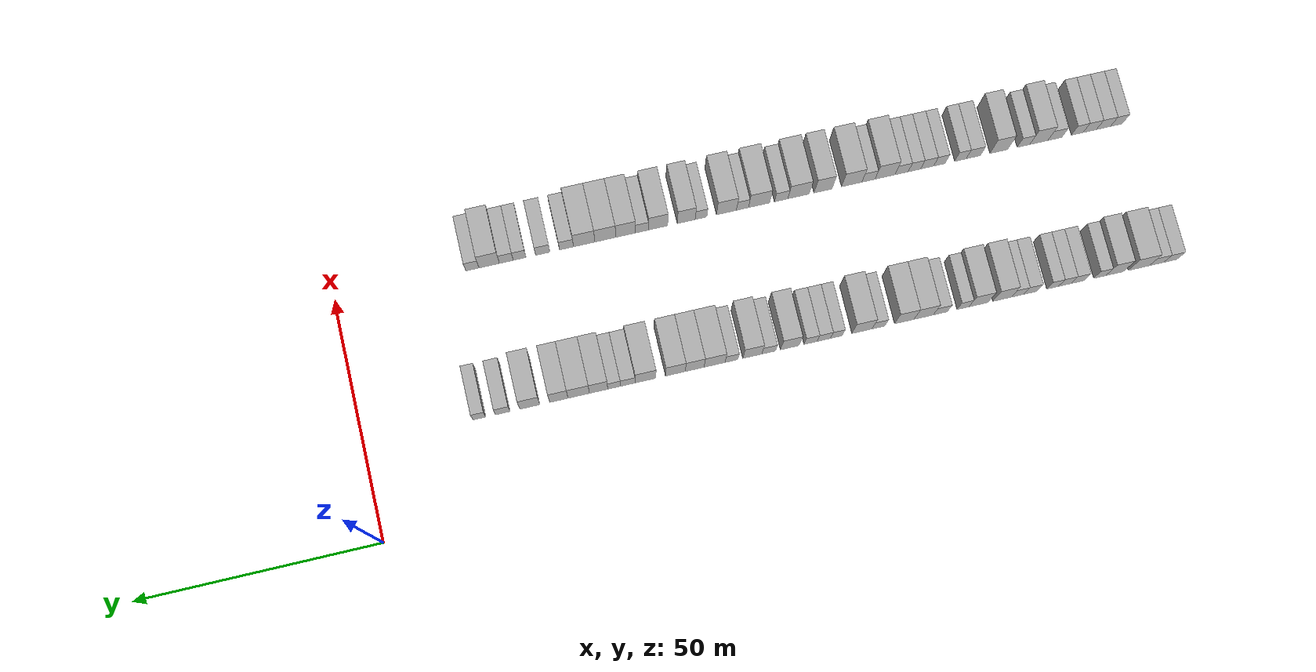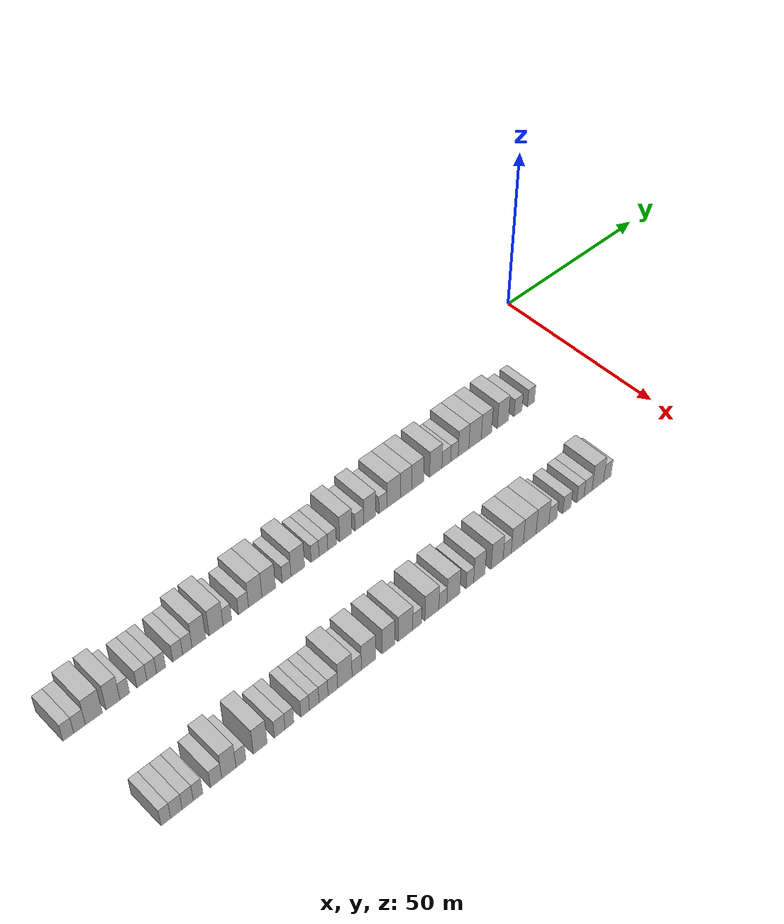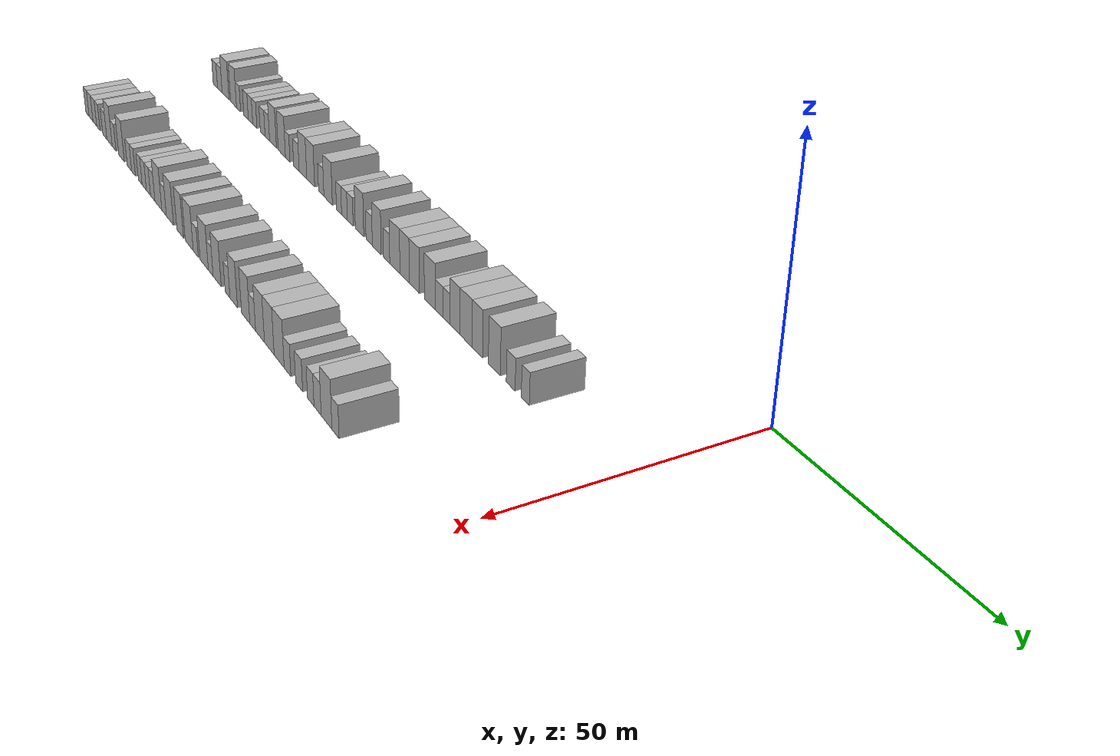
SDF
<sdf version="1.6">
 <world name="default">
  <model name="building_71">
   <static>1</static>
   <pose>25.0000 -165.8649 0 0.000000 0.000000 0.000000</pose>
   <link name="link">
    <pose>0 0 3.00 0 0 0</pose>
    <collision name="collision"><geometry><box><size>10.0000 2.8010 6.0000</size></box></geometry></collision>
    <visual name="visual">
     <cast_shadows>0</cast_shadows>
     <geometry><box><size>10.0000 2.8010 6.0000</size></box></geometry>
     <material>
      <script>
       <uri>model://HANNAS_wall/materials/scripts</uri>
       <uri>model://HANNAS_wall/materials/textures</uri>
       <name>vrc/HANNAS_wall</name>
      </script>
     </material>
    </visual>
   </link>
  </model>
  <model name="building_72">
   <static>1</static>
   <pose>25.0000 -162.9663 0 0.000000 0.000000 0.000000</pose>
   <link name="link">
    <pose>0 0 3.00 0 0 0</pose>
    <collision name="collision"><geometry><box><size>10.0000 2.9960 6.0000</size></box></geometry></collision>
    <visual name="visual">
     <cast_shadows>0</cast_shadows>
     <geometry><box><size>10.0000 2.9960 6.0000</size></box></geometry>
     <material>
      <script>
       <uri>model://HANNAS_wall/materials/scripts</uri>
       <uri>model://HANNAS_wall/materials/textures</uri>
       <name>vrc/HANNAS_wall</name>
      </script>
     </material>
    </visual>
   </link>
  </model>
  <model name="building_73">
   <static>1</static>
   <pose>25.0000 -159.2504 0 0.000000 0.000000 0.000000</pose>
   <link name="link">
    <pose>0 0 4.50 0 0 0</pose>
    <collision name="collision"><geometry><box><size>10.0000 4.4359 9.0000</size></box></geometry></collision>
    <visual name="visual">
     <cast_shadows>0</cast_shadows>
     <geometry><box><size>10.0000 4.4359 9.0000</size></box></geometry>
     <material>
      <script>
       <uri>model://HANNAS_wall/materials/scripts</uri>
       <uri>model://HANNAS_wall/materials/textures</uri>
       <name>vrc/HANNAS_wall</name>
      </script>
     </material>
    </visual>
   </link>
  </model>
  <model name="building_74">
   <static>1</static>
   <pose>25.0000 -154.1892 0 0.000000 0.000000 0.000000</pose>
   <link name="link">
    <pose>0 0 4.50 0 0 0</pose>
    <collision name="collision"><geometry><box><size>10.0000 3.6865 9.0000</size></box></geometry></collision>
    <visual name="visual">
     <cast_shadows>0</cast_shadows>
     <geometry><box><size>10.0000 3.6865 9.0000</size></box></geometry>
     <material>
      <script>
       <uri>model://HANNAS_wall/materials/scripts</uri>
       <uri>model://HANNAS_wall/materials/textures</uri>
       <name>vrc/HANNAS_wall</name>
      </script>
     </material>
    </visual>
   </link>
  </model>
  <model name="building_75">
   <static>1</static>
   <pose>25.0000 -151.0661 0 0.000000 0.000000 0.000000</pose>
   <link name="link">
    <pose>0 0 3.00 0 0 0</pose>
    <collision name="collision"><geometry><box><size>10.0000 2.5597 6.0000</size></box></geometry></collision>
    <visual name="visual">
     <cast_shadows>0</cast_shadows>
     <geometry><box><size>10.0000 2.5597 6.0000</size></box></geometry>
     <material>
      <script>
       <uri>model://HANNAS_wall/materials/scripts</uri>
       <uri>model://HANNAS_wall/materials/textures</uri>
       <name>vrc/HANNAS_wall</name>
      </script>
     </material>
    </visual>
   </link>
  </model>
  <model name="building_76">
   <static>1</static>
   <pose>25.0000 -146.4339 0 0.000000 0.000000 0.000000</pose>
   <link name="link">
    <pose>0 0 3.00 0 0 0</pose>
    <collision name="collision"><geometry><box><size>10.0000 2.7047 6.0000</size></box></geometry></collision>
    <visual name="visual">
     <cast_shadows>0</cast_shadows>
     <geometry><box><size>10.0000 2.7047 6.0000</size></box></geometry>
     <material>
      <script>
       <uri>model://HANNAS_wall/materials/scripts</uri>
       <uri>model://HANNAS_wall/materials/textures</uri>
       <name>vrc/HANNAS_wall</name>
      </script>
     </material>
    </visual>
   </link>
  </model>
  <model name="building_77">
   <static>1</static>
   <pose>25.0000 -143.7549 0 0.000000 0.000000 0.000000</pose>
   <link name="link">
    <pose>0 0 3.00 0 0 0</pose>
    <collision name="collision"><geometry><box><size>10.0000 2.6533 6.0000</size></box></geometry></collision>
    <visual name="visual">
     <cast_shadows>0</cast_shadows>
     <geometry><box><size>10.0000 2.6533 6.0000</size></box></geometry>
     <material>
      <script>
       <uri>model://HANNAS_wall/materials/scripts</uri>
       <uri>model://HANNAS_wall/materials/textures</uri>
       <name>vrc/HANNAS_wall</name>
      </script>
     </material>
    </visual>
   </link>
  </model>
  <model name="building_78">
   <static>1</static>
   <pose>25.0000 -141.1918 0 0.000000 0.000000 0.000000</pose>
   <link name="link">
    <pose>0 0 3.00 0 0 0</pose>
    <collision name="collision"><geometry><box><size>10.0000 2.4729 6.0000</size></box></geometry></collision>
    <visual name="visual">
     <cast_shadows>0</cast_shadows>
     <geometry><box><size>10.0000 2.4729 6.0000</size></box></geometry>
     <material>
      <script>
       <uri>model://HANNAS_wall/materials/scripts</uri>
       <uri>model://HANNAS_wall/materials/textures</uri>
       <name>vrc/HANNAS_wall</name>
      </script>
     </material>
    </visual>
   </link>
  </model>
  <model name="building_79">
   <static>1</static>
   <pose>25.0000 -136.5845 0 0.000000 0.000000 0.000000</pose>
   <link name="link">
    <pose>0 0 3.00 0 0 0</pose>
    <collision name="collision"><geometry><box><size>10.0000 2.7418 6.0000</size></box></geometry></collision>
    <visual name="visual">
     <cast_shadows>0</cast_shadows>
     <geometry><box><size>10.0000 2.7418 6.0000</size></box></geometry>
     <material>
      <script>
       <uri>model://HANNAS_wall/materials/scripts</uri>
       <uri>model://HANNAS_wall/materials/textures</uri>
       <name>vrc/HANNAS_wall</name>
      </script>
     </material>
    </visual>
   </link>
  </model>
  <model name="building_80">
   <static>1</static>
   <pose>25.0000 -133.9002 0 0.000000 0.000000 0.000000</pose>
   <link name="link">
    <pose>0 0 3.00 0 0 0</pose>
    <collision name="collision"><geometry><box><size>10.0000 2.6268 6.0000</size></box></geometry></collision>
    <visual name="visual">
     <cast_shadows>0</cast_shadows>
     <geometry><box><size>10.0000 2.6268 6.0000</size></box></geometry>
     <material>
      <script>
       <uri>model://HANNAS_wall/materials/scripts</uri>
       <uri>model://HANNAS_wall/materials/textures</uri>
       <name>vrc/HANNAS_wall</name>
      </script>
     </material>
    </visual>
   </link>
  </model>
  <model name="building_81">
   <static>1</static>
   <pose>25.0000 -130.6508 0 0.000000 0.000000 0.000000</pose>
   <link name="link">
    <pose>0 0 4.50 0 0 0</pose>
    <collision name="collision"><geometry><box><size>10.0000 3.8720 9.0000</size></box></geometry></collision>
    <visual name="visual">
     <cast_shadows>0</cast_shadows>
     <geometry><box><size>10.0000 3.8720 9.0000</size></box></geometry>
     <material>
      <script>
       <uri>model://HANNAS_wall/materials/scripts</uri>
       <uri>model://HANNAS_wall/materials/textures</uri>
       <name>vrc/HANNAS_wall</name>
      </script>
     </material>
    </visual>
   </link>
  </model>
  <model name="building_82">
   <static>1</static>
   <pose>25.0000 -125.7303 0 0.000000 0.000000 0.000000</pose>
   <link name="link">
    <pose>0 0 4.50 0 0 0</pose>
    <collision name="collision"><geometry><box><size>10.0000 3.9689 9.0000</size></box></geometry></collision>
    <visual name="visual">
     <cast_shadows>0</cast_shadows>
     <geometry><box><size>10.0000 3.9689 9.0000</size></box></geometry>
     <material>
      <script>
       <uri>model://HANNAS_wall/materials/scripts</uri>
       <uri>model://HANNAS_wall/materials/textures</uri>
       <name>vrc/HANNAS_wall</name>
      </script>
     </material>
    </visual>
   </link>
  </model>
  <model name="building_83">
   <static>1</static>
   <pose>25.0000 -122.5171 0 0.000000 0.000000 0.000000</pose>
   <link name="link">
    <pose>0 0 3.00 0 0 0</pose>
    <collision name="collision"><geometry><box><size>10.0000 2.4576 6.0000</size></box></geometry></collision>
    <visual name="visual">
     <cast_shadows>0</cast_shadows>
     <geometry><box><size>10.0000 2.4576 6.0000</size></box></geometry>
     <material>
      <script>
       <uri>model://HANNAS_wall/materials/scripts</uri>
       <uri>model://HANNAS_wall/materials/textures</uri>
       <name>vrc/HANNAS_wall</name>
      </script>
     </material>
    </visual>
   </link>
  </model>
  <model name="building_84">
   <static>1</static>
   <pose>25.0000 -117.8262 0 0.000000 0.000000 0.000000</pose>
   <link name="link">
    <pose>0 0 3.00 0 0 0</pose>
    <collision name="collision"><geometry><box><size>10.0000 2.9241 6.0000</size></box></geometry></collision>
    <visual name="visual">
     <cast_shadows>0</cast_shadows>
     <geometry><box><size>10.0000 2.9241 6.0000</size></box></geometry>
     <material>
      <script>
       <uri>model://HANNAS_wall/materials/scripts</uri>
       <uri>model://HANNAS_wall/materials/textures</uri>
       <name>vrc/HANNAS_wall</name>
      </script>
     </material>
    </visual>
   </link>
  </model>
  <model name="building_85">
   <static>1</static>
   <pose>25.0000 -114.3621 0 0.000000 0.000000 0.000000</pose>
   <link name="link">
    <pose>0 0 4.50 0 0 0</pose>
    <collision name="collision"><geometry><box><size>10.0000 4.0042 9.0000</size></box></geometry></collision>
    <visual name="visual">
     <cast_shadows>0</cast_shadows>
     <geometry><box><size>10.0000 4.0042 9.0000</size></box></geometry>
     <material>
      <script>
       <uri>model://HANNAS_wall/materials/scripts</uri>
       <uri>model://HANNAS_wall/materials/textures</uri>
       <name>vrc/HANNAS_wall</name>
      </script>
     </material>
    </visual>
   </link>
  </model>
  <model name="building_86">
   <static>1</static>
   <pose>25.0000 -110.3411 0 0.000000 0.000000 0.000000</pose>
   <link name="link">
    <pose>0 0 4.50 0 0 0</pose>
    <collision name="collision"><geometry><box><size>10.0000 4.0378 9.0000</size></box></geometry></collision>
    <visual name="visual">
     <cast_shadows>0</cast_shadows>
     <geometry><box><size>10.0000 4.0378 9.0000</size></box></geometry>
     <material>
      <script>
       <uri>model://HANNAS_wall/materials/scripts</uri>
       <uri>model://HANNAS_wall/materials/textures</uri>
       <name>vrc/HANNAS_wall</name>
      </script>
     </material>
    </visual>
   </link>
  </model>
  <model name="building_87">
   <static>1</static>
   <pose>25.0000 -104.9883 0 0.000000 0.000000 0.000000</pose>
   <link name="link">
    <pose>0 0 3.00 0 0 0</pose>
    <collision name="collision"><geometry><box><size>10.0000 2.6678 6.0000</size></box></geometry></collision>
    <visual name="visual">
     <cast_shadows>0</cast_shadows>
     <geometry><box><size>10.0000 2.6678 6.0000</size></box></geometry>
     <material>
      <script>
       <uri>model://HANNAS_wall/materials/scripts</uri>
       <uri>model://HANNAS_wall/materials/textures</uri>
       <name>vrc/HANNAS_wall</name>
      </script>
     </material>
    </visual>
   </link>
  </model>
  <model name="building_88">
   <static>1</static>
   <pose>25.0000 -101.5781 0 0.000000 0.000000 0.000000</pose>
   <link name="link">
    <pose>0 0 4.50 0 0 0</pose>
    <collision name="collision"><geometry><box><size>10.0000 4.1526 9.0000</size></box></geometry></collision>
    <visual name="visual">
     <cast_shadows>0</cast_shadows>
     <geometry><box><size>10.0000 4.1526 9.0000</size></box></geometry>
     <material>
      <script>
       <uri>model://HANNAS_wall/materials/scripts</uri>
       <uri>model://HANNAS_wall/materials/textures</uri>
       <name>vrc/HANNAS_wall</name>
      </script>
     </material>
    </visual>
   </link>
  </model>
  <model name="building_89">
   <static>1</static>
   <pose>25.0000 -96.2816 0 0.000000 0.000000 0.000000</pose>
   <link name="link">
    <pose>0 0 3.00 0 0 0</pose>
    <collision name="collision"><geometry><box><size>10.0000 2.4404 6.0000</size></box></geometry></collision>
    <visual name="visual">
     <cast_shadows>0</cast_shadows>
     <geometry><box><size>10.0000 2.4404 6.0000</size></box></geometry>
     <material>
      <script>
       <uri>model://HANNAS_wall/materials/scripts</uri>
       <uri>model://HANNAS_wall/materials/textures</uri>
       <name>vrc/HANNAS_wall</name>
      </script>
     </material>
    </visual>
   </link>
  </model>
  <model name="building_90">
   <static>1</static>
   <pose>25.0000 -93.6908 0 0.000000 0.000000 0.000000</pose>
   <link name="link">
    <pose>0 0 3.00 0 0 0</pose>
    <collision name="collision"><geometry><box><size>10.0000 2.7411 6.0000</size></box></geometry></collision>
    <visual name="visual">
     <cast_shadows>0</cast_shadows>
     <geometry><box><size>10.0000 2.7411 6.0000</size></box></geometry>
     <material>
      <script>
       <uri>model://HANNAS_wall/materials/scripts</uri>
       <uri>model://HANNAS_wall/materials/textures</uri>
       <name>vrc/HANNAS_wall</name>
      </script>
     </material>
    </visual>
   </link>
  </model>
  <model name="building_91">
   <static>1</static>
   <pose>25.0000 -90.9643 0 0.000000 0.000000 0.000000</pose>
   <link name="link">
    <pose>0 0 3.00 0 0 0</pose>
    <collision name="collision"><geometry><box><size>10.0000 2.7120 6.0000</size></box></geometry></collision>
    <visual name="visual">
     <cast_shadows>0</cast_shadows>
     <geometry><box><size>10.0000 2.7120 6.0000</size></box></geometry>
     <material>
      <script>
       <uri>model://HANNAS_wall/materials/scripts</uri>
       <uri>model://HANNAS_wall/materials/textures</uri>
       <name>vrc/HANNAS_wall</name>
      </script>
     </material>
    </visual>
   </link>
  </model>
  <model name="building_92">
   <static>1</static>
   <pose>25.0000 -86.6749 0 0.000000 0.000000 0.000000</pose>
   <link name="link">
    <pose>0 0 4.50 0 0 0</pose>
    <collision name="collision"><geometry><box><size>10.0000 3.8668 9.0000</size></box></geometry></collision>
    <visual name="visual">
     <cast_shadows>0</cast_shadows>
     <geometry><box><size>10.0000 3.8668 9.0000</size></box></geometry>
     <material>
      <script>
       <uri>model://HANNAS_wall/materials/scripts</uri>
       <uri>model://HANNAS_wall/materials/textures</uri>
       <name>vrc/HANNAS_wall</name>
      </script>
     </material>
    </visual>
   </link>
  </model>
  <model name="building_93">
   <static>1</static>
   <pose>25.0000 -82.3297 0 0.000000 0.000000 0.000000</pose>
   <link name="link">
    <pose>0 0 3.00 0 0 0</pose>
    <collision name="collision"><geometry><box><size>10.0000 2.8237 6.0000</size></box></geometry></collision>
    <visual name="visual">
     <cast_shadows>0</cast_shadows>
     <geometry><box><size>10.0000 2.8237 6.0000</size></box></geometry>
     <material>
      <script>
       <uri>model://HANNAS_wall/materials/scripts</uri>
       <uri>model://HANNAS_wall/materials/textures</uri>
       <name>vrc/HANNAS_wall</name>
      </script>
     </material>
    </visual>
   </link>
  </model>
  <model name="building_94">
   <static>1</static>
   <pose>25.0000 -78.9686 0 0.000000 0.000000 0.000000</pose>
   <link name="link">
    <pose>0 0 4.50 0 0 0</pose>
    <collision name="collision"><geometry><box><size>10.0000 3.8985 9.0000</size></box></geometry></collision>
    <visual name="visual">
     <cast_shadows>0</cast_shadows>
     <geometry><box><size>10.0000 3.8985 9.0000</size></box></geometry>
     <material>
      <script>
       <uri>model://HANNAS_wall/materials/scripts</uri>
       <uri>model://HANNAS_wall/materials/textures</uri>
       <name>vrc/HANNAS_wall</name>
      </script>
     </material>
    </visual>
   </link>
  </model>
  <model name="building_95">
   <static>1</static>
   <pose>25.0000 -74.6832 0 0.000000 0.000000 0.000000</pose>
   <link name="link">
    <pose>0 0 3.00 0 0 0</pose>
    <collision name="collision"><geometry><box><size>10.0000 2.6723 6.0000</size></box></geometry></collision>
    <visual name="visual">
     <cast_shadows>0</cast_shadows>
     <geometry><box><size>10.0000 2.6723 6.0000</size></box></geometry>
     <material>
      <script>
       <uri>model://HANNAS_wall/materials/scripts</uri>
       <uri>model://HANNAS_wall/materials/textures</uri>
       <name>vrc/HANNAS_wall</name>
      </script>
     </material>
    </visual>
   </link>
  </model>
  <model name="building_96">
   <static>1</static>
   <pose>25.0000 -71.1993 0 0.000000 0.000000 0.000000</pose>
   <link name="link">
    <pose>0 0 4.50 0 0 0</pose>
    <collision name="collision"><geometry><box><size>10.0000 4.2955 9.0000</size></box></geometry></collision>
    <visual name="visual">
     <cast_shadows>0</cast_shadows>
     <geometry><box><size>10.0000 4.2955 9.0000</size></box></geometry>
     <material>
      <script>
       <uri>model://HANNAS_wall/materials/scripts</uri>
       <uri>model://HANNAS_wall/materials/textures</uri>
       <name>vrc/HANNAS_wall</name>
      </script>
     </material>
    </visual>
   </link>
  </model>
  <model name="building_97">
   <static>1</static>
   <pose>25.0000 -67.1244 0 0.000000 0.000000 0.000000</pose>
   <link name="link">
    <pose>0 0 4.50 0 0 0</pose>
    <collision name="collision"><geometry><box><size>10.0000 3.8541 9.0000</size></box></geometry></collision>
    <visual name="visual">
     <cast_shadows>0</cast_shadows>
     <geometry><box><size>10.0000 3.8541 9.0000</size></box></geometry>
     <material>
      <script>
       <uri>model://HANNAS_wall/materials/scripts</uri>
       <uri>model://HANNAS_wall/materials/textures</uri>
       <name>vrc/HANNAS_wall</name>
      </script>
     </material>
    </visual>
   </link>
  </model>
  <model name="building_98">
   <static>1</static>
   <pose>25.0000 -63.1837 0 0.000000 0.000000 0.000000</pose>
   <link name="link">
    <pose>0 0 4.50 0 0 0</pose>
    <collision name="collision"><geometry><box><size>10.0000 4.0274 9.0000</size></box></geometry></collision>
    <visual name="visual">
     <cast_shadows>0</cast_shadows>
     <geometry><box><size>10.0000 4.0274 9.0000</size></box></geometry>
     <material>
      <script>
       <uri>model://HANNAS_wall/materials/scripts</uri>
       <uri>model://HANNAS_wall/materials/textures</uri>
       <name>vrc/HANNAS_wall</name>
      </script>
     </material>
    </visual>
   </link>
  </model>
  <model name="building_99">
   <static>1</static>
   <pose>25.0000 -57.0702 0 0.000000 0.000000 0.000000</pose>
   <link name="link">
    <pose>0 0 4.50 0 0 0</pose>
    <collision name="collision"><geometry><box><size>10.0000 4.1996 9.0000</size></box></geometry></collision>
    <visual name="visual">
     <cast_shadows>0</cast_shadows>
     <geometry><box><size>10.0000 4.1996 9.0000</size></box></geometry>
     <material>
      <script>
       <uri>model://HANNAS_wall/materials/scripts</uri>
       <uri>model://HANNAS_wall/materials/textures</uri>
       <name>vrc/HANNAS_wall</name>
      </script>
     </material>
    </visual>
   </link>
  </model>
  <model name="building_100">
   <static>1</static>
   <pose>25.0000 -53.4738 0 0.000000 0.000000 0.000000</pose>
   <link name="link">
    <pose>0 0 3.00 0 0 0</pose>
    <collision name="collision"><geometry><box><size>10.0000 2.9931 6.0000</size></box></geometry></collision>
    <visual name="visual">
     <cast_shadows>0</cast_shadows>
     <geometry><box><size>10.0000 2.9931 6.0000</size></box></geometry>
     <material>
      <script>
       <uri>model://HANNAS_wall/materials/scripts</uri>
       <uri>model://HANNAS_wall/materials/textures</uri>
       <name>vrc/HANNAS_wall</name>
      </script>
     </material>
    </visual>
   </link>
  </model>
  <model name="building_101">
   <static>1</static>
   <pose>25.0000 -50.6737 0 0.000000 0.000000 0.000000</pose>
   <link name="link">
    <pose>0 0 3.00 0 0 0</pose>
    <collision name="collision"><geometry><box><size>10.0000 2.6070 6.0000</size></box></geometry></collision>
    <visual name="visual">
     <cast_shadows>0</cast_shadows>
     <geometry><box><size>10.0000 2.6070 6.0000</size></box></geometry>
     <material>
      <script>
       <uri>model://HANNAS_wall/materials/scripts</uri>
       <uri>model://HANNAS_wall/materials/textures</uri>
       <name>vrc/HANNAS_wall</name>
      </script>
     </material>
    </visual>
   </link>
  </model>
  <model name="building_102">
   <static>1</static>
   <pose>25.0000 -47.5036 0 0.000000 0.000000 0.000000</pose>
   <link name="link">
    <pose>0 0 4.50 0 0 0</pose>
    <collision name="collision"><geometry><box><size>10.0000 3.7333 9.0000</size></box></geometry></collision>
    <visual name="visual">
     <cast_shadows>0</cast_shadows>
     <geometry><box><size>10.0000 3.7333 9.0000</size></box></geometry>
     <material>
      <script>
       <uri>model://HANNAS_wall/materials/scripts</uri>
       <uri>model://HANNAS_wall/materials/textures</uri>
       <name>vrc/HANNAS_wall</name>
      </script>
     </material>
    </visual>
   </link>
  </model>
  <model name="building_103">
   <static>1</static>
   <pose>25.0000 -43.4564 0 0.000000 0.000000 0.000000</pose>
   <link name="link">
    <pose>0 0 4.50 0 0 0</pose>
    <collision name="collision"><geometry><box><size>10.0000 4.3610 9.0000</size></box></geometry></collision>
    <visual name="visual">
     <cast_shadows>0</cast_shadows>
     <geometry><box><size>10.0000 4.3610 9.0000</size></box></geometry>
     <material>
      <script>
       <uri>model://HANNAS_wall/materials/scripts</uri>
       <uri>model://HANNAS_wall/materials/textures</uri>
       <name>vrc/HANNAS_wall</name>
      </script>
     </material>
    </visual>
   </link>
  </model>
  <model name="building_104">
   <static>1</static>
   <pose>25.0000 -39.4117 0 0.000000 0.000000 0.000000</pose>
   <link name="link">
    <pose>0 0 4.50 0 0 0</pose>
    <collision name="collision"><geometry><box><size>10.0000 3.7282 9.0000</size></box></geometry></collision>
    <visual name="visual">
     <cast_shadows>0</cast_shadows>
     <geometry><box><size>10.0000 3.7282 9.0000</size></box></geometry>
     <material>
      <script>
       <uri>model://HANNAS_wall/materials/scripts</uri>
       <uri>model://HANNAS_wall/materials/textures</uri>
       <name>vrc/HANNAS_wall</name>
      </script>
     </material>
    </visual>
   </link>
  </model>
  <model name="building_105">
   <static>1</static>
   <pose>25.0000 -33.5213 0 0.000000 0.000000 0.000000</pose>
   <link name="link">
    <pose>0 0 4.50 0 0 0</pose>
    <collision name="collision"><geometry><box><size>10.0000 4.0526 9.0000</size></box></geometry></collision>
    <visual name="visual">
     <cast_shadows>0</cast_shadows>
     <geometry><box><size>10.0000 4.0526 9.0000</size></box></geometry>
     <material>
      <script>
       <uri>model://HANNAS_wall/materials/scripts</uri>
       <uri>model://HANNAS_wall/materials/textures</uri>
       <name>vrc/HANNAS_wall</name>
      </script>
     </material>
    </visual>
   </link>
  </model>
  <model name="building_106">
   <static>1</static>
   <pose>25.0000 -28.0312 0 0.000000 0.000000 0.000000</pose>
   <link name="link">
    <pose>0 0 3.00 0 0 0</pose>
    <collision name="collision"><geometry><box><size>10.0000 2.9277 6.0000</size></box></geometry></collision>
    <visual name="visual">
     <cast_shadows>0</cast_shadows>
     <geometry><box><size>10.0000 2.9277 6.0000</size></box></geometry>
     <material>
      <script>
       <uri>model://HANNAS_wall/materials/scripts</uri>
       <uri>model://HANNAS_wall/materials/textures</uri>
       <name>vrc/HANNAS_wall</name>
      </script>
     </material>
    </visual>
   </link>
  </model>
  <model name="building_107">
   <static>1</static>
   <pose>25.0000 -23.2825 0 0.000000 0.000000 0.000000</pose>
   <link name="link">
    <pose>0 0 3.00 0 0 0</pose>
    <collision name="collision"><geometry><box><size>10.0000 2.5696 6.0000</size></box></geometry></collision>
    <visual name="visual">
     <cast_shadows>0</cast_shadows>
     <geometry><box><size>10.0000 2.5696 6.0000</size></box></geometry>
     <material>
      <script>
       <uri>model://HANNAS_wall/materials/scripts</uri>
       <uri>model://HANNAS_wall/materials/textures</uri>
       <name>vrc/HANNAS_wall</name>
      </script>
     </material>
    </visual>
   </link>
  </model>
  <model name="building_300">
   <static>1</static>
   <pose>55.0000 -163.1459 0 0.000000 0.000000 0.000000</pose>
   <link name="link">
    <pose>0 0 3.00 0 0 0</pose>
    <collision name="collision"><geometry><box><size>10.0000 2.4776 6.0000</size></box></geometry></collision>
    <visual name="visual">
     <cast_shadows>0</cast_shadows>
     <geometry><box><size>10.0000 2.4776 6.0000</size></box></geometry>
     <material>
      <script>
       <uri>model://HANNAS_wall/materials/scripts</uri>
       <uri>model://HANNAS_wall/materials/textures</uri>
       <name>vrc/HANNAS_wall</name>
      </script>
     </material>
    </visual>
   </link>
  </model>
  <model name="building_301">
   <static>1</static>
   <pose>55.0000 -160.4228 0 0.000000 0.000000 0.000000</pose>
   <link name="link">
    <pose>0 0 3.00 0 0 0</pose>
    <collision name="collision"><geometry><box><size>10.0000 2.9687 6.0000</size></box></geometry></collision>
    <visual name="visual">
     <cast_shadows>0</cast_shadows>
     <geometry><box><size>10.0000 2.9687 6.0000</size></box></geometry>
     <material>
      <script>
       <uri>model://HANNAS_wall/materials/scripts</uri>
       <uri>model://HANNAS_wall/materials/textures</uri>
       <name>vrc/HANNAS_wall</name>
      </script>
     </material>
    </visual>
   </link>
  </model>
  <model name="building_302">
   <static>1</static>
   <pose>55.0000 -157.5015 0 0.000000 0.000000 0.000000</pose>
   <link name="link">
    <pose>0 0 3.00 0 0 0</pose>
    <collision name="collision"><geometry><box><size>10.0000 2.8740 6.0000</size></box></geometry></collision>
    <visual name="visual">
     <cast_shadows>0</cast_shadows>
     <geometry><box><size>10.0000 2.8740 6.0000</size></box></geometry>
     <material>
      <script>
       <uri>model://HANNAS_wall/materials/scripts</uri>
       <uri>model://HANNAS_wall/materials/textures</uri>
       <name>vrc/HANNAS_wall</name>
      </script>
     </material>
    </visual>
   </link>
  </model>
  <model name="building_303">
   <static>1</static>
   <pose>55.0000 -154.8162 0 0.000000 0.000000 0.000000</pose>
   <link name="link">
    <pose>0 0 3.00 0 0 0</pose>
    <collision name="collision"><geometry><box><size>10.0000 2.4965 6.0000</size></box></geometry></collision>
    <visual name="visual">
     <cast_shadows>0</cast_shadows>
     <geometry><box><size>10.0000 2.4965 6.0000</size></box></geometry>
     <material>
      <script>
       <uri>model://HANNAS_wall/materials/scripts</uri>
       <uri>model://HANNAS_wall/materials/textures</uri>
       <name>vrc/HANNAS_wall</name>
      </script>
     </material>
    </visual>
   </link>
  </model>
  <model name="building_304">
   <static>1</static>
   <pose>55.0000 -150.0710 0 0.000000 0.000000 0.000000</pose>
   <link name="link">
    <pose>0 0 3.00 0 0 0</pose>
    <collision name="collision"><geometry><box><size>10.0000 2.9939 6.0000</size></box></geometry></collision>
    <visual name="visual">
     <cast_shadows>0</cast_shadows>
     <geometry><box><size>10.0000 2.9939 6.0000</size></box></geometry>
     <material>
      <script>
       <uri>model://HANNAS_wall/materials/scripts</uri>
       <uri>model://HANNAS_wall/materials/textures</uri>
       <name>vrc/HANNAS_wall</name>
      </script>
     </material>
    </visual>
   </link>
  </model>
  <model name="building_305">
   <static>1</static>
   <pose>55.0000 -146.6615 0 0.000000 0.000000 0.000000</pose>
   <link name="link">
    <pose>0 0 4.50 0 0 0</pose>
    <collision name="collision"><geometry><box><size>10.0000 3.8251 9.0000</size></box></geometry></collision>
    <visual name="visual">
     <cast_shadows>0</cast_shadows>
     <geometry><box><size>10.0000 3.8251 9.0000</size></box></geometry>
     <material>
      <script>
       <uri>model://HANNAS_wall/materials/scripts</uri>
       <uri>model://HANNAS_wall/materials/textures</uri>
       <name>vrc/HANNAS_wall</name>
      </script>
     </material>
    </visual>
   </link>
  </model>
  <model name="building_306">
   <static>1</static>
   <pose>55.0000 -143.4036 0 0.000000 0.000000 0.000000</pose>
   <link name="link">
    <pose>0 0 3.00 0 0 0</pose>
    <collision name="collision"><geometry><box><size>10.0000 2.6906 6.0000</size></box></geometry></collision>
    <visual name="visual">
     <cast_shadows>0</cast_shadows>
     <geometry><box><size>10.0000 2.6906 6.0000</size></box></geometry>
     <material>
      <script>
       <uri>model://HANNAS_wall/materials/scripts</uri>
       <uri>model://HANNAS_wall/materials/textures</uri>
       <name>vrc/HANNAS_wall</name>
      </script>
     </material>
    </visual>
   </link>
  </model>
  <model name="building_307">
   <static>1</static>
   <pose>55.0000 -138.1661 0 0.000000 0.000000 0.000000</pose>
   <link name="link">
    <pose>0 0 4.50 0 0 0</pose>
    <collision name="collision"><geometry><box><size>10.0000 3.7845 9.0000</size></box></geometry></collision>
    <visual name="visual">
     <cast_shadows>0</cast_shadows>
     <geometry><box><size>10.0000 3.7845 9.0000</size></box></geometry>
     <material>
      <script>
       <uri>model://HANNAS_wall/materials/scripts</uri>
       <uri>model://HANNAS_wall/materials/textures</uri>
       <name>vrc/HANNAS_wall</name>
      </script>
     </material>
    </visual>
   </link>
  </model>
  <model name="building_308">
   <static>1</static>
   <pose>55.0000 -132.7768 0 0.000000 0.000000 0.000000</pose>
   <link name="link">
    <pose>0 0 3.00 0 0 0</pose>
    <collision name="collision"><geometry><box><size>10.0000 2.9939 6.0000</size></box></geometry></collision>
    <visual name="visual">
     <cast_shadows>0</cast_shadows>
     <geometry><box><size>10.0000 2.9939 6.0000</size></box></geometry>
     <material>
      <script>
       <uri>model://HANNAS_wall/materials/scripts</uri>
       <uri>model://HANNAS_wall/materials/textures</uri>
       <name>vrc/HANNAS_wall</name>
      </script>
     </material>
    </visual>
   </link>
  </model>
  <model name="building_309">
   <static>1</static>
   <pose>55.0000 -130.0526 0 0.000000 0.000000 0.000000</pose>
   <link name="link">
    <pose>0 0 3.00 0 0 0</pose>
    <collision name="collision"><geometry><box><size>10.0000 2.4545 6.0000</size></box></geometry></collision>
    <visual name="visual">
     <cast_shadows>0</cast_shadows>
     <geometry><box><size>10.0000 2.4545 6.0000</size></box></geometry>
     <material>
      <script>
       <uri>model://HANNAS_wall/materials/scripts</uri>
       <uri>model://HANNAS_wall/materials/textures</uri>
       <name>vrc/HANNAS_wall</name>
      </script>
     </material>
    </visual>
   </link>
  </model>
  <model name="building_310">
   <static>1</static>
   <pose>55.0000 -125.6233 0 0.000000 0.000000 0.000000</pose>
   <link name="link">
    <pose>0 0 3.00 0 0 0</pose>
    <collision name="collision"><geometry><box><size>10.0000 2.4041 6.0000</size></box></geometry></collision>
    <visual name="visual">
     <cast_shadows>0</cast_shadows>
     <geometry><box><size>10.0000 2.4041 6.0000</size></box></geometry>
     <material>
      <script>
       <uri>model://HANNAS_wall/materials/scripts</uri>
       <uri>model://HANNAS_wall/materials/textures</uri>
       <name>vrc/HANNAS_wall</name>
      </script>
     </material>
    </visual>
   </link>
  </model>
  <model name="building_311">
   <static>1</static>
   <pose>55.0000 -123.0394 0 0.000000 0.000000 0.000000</pose>
   <link name="link">
    <pose>0 0 3.00 0 0 0</pose>
    <collision name="collision"><geometry><box><size>10.0000 2.7638 6.0000</size></box></geometry></collision>
    <visual name="visual">
     <cast_shadows>0</cast_shadows>
     <geometry><box><size>10.0000 2.7638 6.0000</size></box></geometry>
     <material>
      <script>
       <uri>model://HANNAS_wall/materials/scripts</uri>
       <uri>model://HANNAS_wall/materials/textures</uri>
       <name>vrc/HANNAS_wall</name>
      </script>
     </material>
    </visual>
   </link>
  </model>
  <model name="building_312">
   <static>1</static>
   <pose>55.0000 -120.3523 0 0.000000 0.000000 0.000000</pose>
   <link name="link">
    <pose>0 0 3.00 0 0 0</pose>
    <collision name="collision"><geometry><box><size>10.0000 2.6102 6.0000</size></box></geometry></collision>
    <visual name="visual">
     <cast_shadows>0</cast_shadows>
     <geometry><box><size>10.0000 2.6102 6.0000</size></box></geometry>
     <material>
      <script>
       <uri>model://HANNAS_wall/materials/scripts</uri>
       <uri>model://HANNAS_wall/materials/textures</uri>
       <name>vrc/HANNAS_wall</name>
      </script>
     </material>
    </visual>
   </link>
  </model>
  <model name="building_313">
   <static>1</static>
   <pose>55.0000 -117.6479 0 0.000000 0.000000 0.000000</pose>
   <link name="link">
    <pose>0 0 3.00 0 0 0</pose>
    <collision name="collision"><geometry><box><size>10.0000 2.7987 6.0000</size></box></geometry></collision>
    <visual name="visual">
     <cast_shadows>0</cast_shadows>
     <geometry><box><size>10.0000 2.7987 6.0000</size></box></geometry>
     <material>
      <script>
       <uri>model://HANNAS_wall/materials/scripts</uri>
       <uri>model://HANNAS_wall/materials/textures</uri>
       <name>vrc/HANNAS_wall</name>
      </script>
     </material>
    </visual>
   </link>
  </model>
  <model name="building_314">
   <static>1</static>
   <pose>55.0000 -114.1378 0 0.000000 0.000000 0.000000</pose>
   <link name="link">
    <pose>0 0 4.50 0 0 0</pose>
    <collision name="collision"><geometry><box><size>10.0000 4.2214 9.0000</size></box></geometry></collision>
    <visual name="visual">
     <cast_shadows>0</cast_shadows>
     <geometry><box><size>10.0000 4.2214 9.0000</size></box></geometry>
     <material>
      <script>
       <uri>model://HANNAS_wall/materials/scripts</uri>
       <uri>model://HANNAS_wall/materials/textures</uri>
       <name>vrc/HANNAS_wall</name>
      </script>
     </material>
    </visual>
   </link>
  </model>
  <model name="building_315">
   <static>1</static>
   <pose>55.0000 -110.6508 0 0.000000 0.000000 0.000000</pose>
   <link name="link">
    <pose>0 0 3.00 0 0 0</pose>
    <collision name="collision"><geometry><box><size>10.0000 2.7526 6.0000</size></box></geometry></collision>
    <visual name="visual">
     <cast_shadows>0</cast_shadows>
     <geometry><box><size>10.0000 2.7526 6.0000</size></box></geometry>
     <material>
      <script>
       <uri>model://HANNAS_wall/materials/scripts</uri>
       <uri>model://HANNAS_wall/materials/textures</uri>
       <name>vrc/HANNAS_wall</name>
      </script>
     </material>
    </visual>
   </link>
  </model>
  <model name="building_316">
   <static>1</static>
   <pose>55.0000 -107.1369 0 0.000000 0.000000 0.000000</pose>
   <link name="link">
    <pose>0 0 4.50 0 0 0</pose>
    <collision name="collision"><geometry><box><size>10.0000 4.2753 9.0000</size></box></geometry></collision>
    <visual name="visual">
     <cast_shadows>0</cast_shadows>
     <geometry><box><size>10.0000 4.2753 9.0000</size></box></geometry>
     <material>
      <script>
       <uri>model://HANNAS_wall/materials/scripts</uri>
       <uri>model://HANNAS_wall/materials/textures</uri>
       <name>vrc/HANNAS_wall</name>
      </script>
     </material>
    </visual>
   </link>
  </model>
  <model name="building_317">
   <static>1</static>
   <pose>55.0000 -101.1091 0 0.000000 0.000000 0.000000</pose>
   <link name="link">
    <pose>0 0 4.50 0 0 0</pose>
    <collision name="collision"><geometry><box><size>10.0000 3.7802 9.0000</size></box></geometry></collision>
    <visual name="visual">
     <cast_shadows>0</cast_shadows>
     <geometry><box><size>10.0000 3.7802 9.0000</size></box></geometry>
     <material>
      <script>
       <uri>model://HANNAS_wall/materials/scripts</uri>
       <uri>model://HANNAS_wall/materials/textures</uri>
       <name>vrc/HANNAS_wall</name>
      </script>
     </material>
    </visual>
   </link>
  </model>
  <model name="building_318">
   <static>1</static>
   <pose>55.0000 -95.9746 0 0.000000 0.000000 0.000000</pose>
   <link name="link">
    <pose>0 0 4.50 0 0 0</pose>
    <collision name="collision"><geometry><box><size>10.0000 4.4889 9.0000</size></box></geometry></collision>
    <visual name="visual">
     <cast_shadows>0</cast_shadows>
     <geometry><box><size>10.0000 4.4889 9.0000</size></box></geometry>
     <material>
      <script>
       <uri>model://HANNAS_wall/materials/scripts</uri>
       <uri>model://HANNAS_wall/materials/textures</uri>
       <name>vrc/HANNAS_wall</name>
      </script>
     </material>
    </visual>
   </link>
  </model>
  <model name="building_319">
   <static>1</static>
   <pose>55.0000 -92.3309 0 0.000000 0.000000 0.000000</pose>
   <link name="link">
    <pose>0 0 3.00 0 0 0</pose>
    <collision name="collision"><geometry><box><size>10.0000 2.7985 6.0000</size></box></geometry></collision>
    <visual name="visual">
     <cast_shadows>0</cast_shadows>
     <geometry><box><size>10.0000 2.7985 6.0000</size></box></geometry>
     <material>
      <script>
       <uri>model://HANNAS_wall/materials/scripts</uri>
       <uri>model://HANNAS_wall/materials/textures</uri>
       <name>vrc/HANNAS_wall</name>
      </script>
     </material>
    </visual>
   </link>
  </model>
  <model name="building_320">
   <static>1</static>
   <pose>55.0000 -87.7196 0 0.000000 0.000000 0.000000</pose>
   <link name="link">
    <pose>0 0 4.50 0 0 0</pose>
    <collision name="collision"><geometry><box><size>10.0000 4.4240 9.0000</size></box></geometry></collision>
    <visual name="visual">
     <cast_shadows>0</cast_shadows>
     <geometry><box><size>10.0000 4.4240 9.0000</size></box></geometry>
     <material>
      <script>
       <uri>model://HANNAS_wall/materials/scripts</uri>
       <uri>model://HANNAS_wall/materials/textures</uri>
       <name>vrc/HANNAS_wall</name>
      </script>
     </material>
    </visual>
   </link>
  </model>
  <model name="building_321">
   <static>1</static>
   <pose>55.0000 -84.2412 0 0.000000 0.000000 0.000000</pose>
   <link name="link">
    <pose>0 0 3.00 0 0 0</pose>
    <collision name="collision"><geometry><box><size>10.0000 2.5329 6.0000</size></box></geometry></collision>
    <visual name="visual">
     <cast_shadows>0</cast_shadows>
     <geometry><box><size>10.0000 2.5329 6.0000</size></box></geometry>
     <material>
      <script>
       <uri>model://HANNAS_wall/materials/scripts</uri>
       <uri>model://HANNAS_wall/materials/textures</uri>
       <name>vrc/HANNAS_wall</name>
      </script>
     </material>
    </visual>
   </link>
  </model>
  <model name="building_322">
   <static>1</static>
   <pose>55.0000 -80.8895 0 0.000000 0.000000 0.000000</pose>
   <link name="link">
    <pose>0 0 4.50 0 0 0</pose>
    <collision name="collision"><geometry><box><size>10.0000 4.1704 9.0000</size></box></geometry></collision>
    <visual name="visual">
     <cast_shadows>0</cast_shadows>
     <geometry><box><size>10.0000 4.1704 9.0000</size></box></geometry>
     <material>
      <script>
       <uri>model://HANNAS_wall/materials/scripts</uri>
       <uri>model://HANNAS_wall/materials/textures</uri>
       <name>vrc/HANNAS_wall</name>
      </script>
     </material>
    </visual>
   </link>
  </model>
  <model name="building_323">
   <static>1</static>
   <pose>55.0000 -75.5887 0 0.000000 0.000000 0.000000</pose>
   <link name="link">
    <pose>0 0 3.00 0 0 0</pose>
    <collision name="collision"><geometry><box><size>10.0000 2.4312 6.0000</size></box></geometry></collision>
    <visual name="visual">
     <cast_shadows>0</cast_shadows>
     <geometry><box><size>10.0000 2.4312 6.0000</size></box></geometry>
     <material>
      <script>
       <uri>model://HANNAS_wall/materials/scripts</uri>
       <uri>model://HANNAS_wall/materials/textures</uri>
       <name>vrc/HANNAS_wall</name>
      </script>
     </material>
    </visual>
   </link>
  </model>
  <model name="building_324">
   <static>1</static>
   <pose>55.0000 -72.5050 0 0.000000 0.000000 0.000000</pose>
   <link name="link">
    <pose>0 0 4.50 0 0 0</pose>
    <collision name="collision"><geometry><box><size>10.0000 3.7363 9.0000</size></box></geometry></collision>
    <visual name="visual">
     <cast_shadows>0</cast_shadows>
     <geometry><box><size>10.0000 3.7363 9.0000</size></box></geometry>
     <material>
      <script>
       <uri>model://HANNAS_wall/materials/scripts</uri>
       <uri>model://HANNAS_wall/materials/textures</uri>
       <name>vrc/HANNAS_wall</name>
      </script>
     </material>
    </visual>
   </link>
  </model>
  <model name="building_325">
   <static>1</static>
   <pose>55.0000 -66.6441 0 0.000000 0.000000 0.000000</pose>
   <link name="link">
    <pose>0 0 4.50 0 0 0</pose>
    <collision name="collision"><geometry><box><size>10.0000 3.9856 9.0000</size></box></geometry></collision>
    <visual name="visual">
     <cast_shadows>0</cast_shadows>
     <geometry><box><size>10.0000 3.9856 9.0000</size></box></geometry>
     <material>
      <script>
       <uri>model://HANNAS_wall/materials/scripts</uri>
       <uri>model://HANNAS_wall/materials/textures</uri>
       <name>vrc/HANNAS_wall</name>
      </script>
     </material>
    </visual>
   </link>
  </model>
  <model name="building_326">
   <static>1</static>
   <pose>55.0000 -63.2972 0 0.000000 0.000000 0.000000</pose>
   <link name="link">
    <pose>0 0 3.00 0 0 0</pose>
    <collision name="collision"><geometry><box><size>10.0000 2.7081 6.0000</size></box></geometry></collision>
    <visual name="visual">
     <cast_shadows>0</cast_shadows>
     <geometry><box><size>10.0000 2.7081 6.0000</size></box></geometry>
     <material>
      <script>
       <uri>model://HANNAS_wall/materials/scripts</uri>
       <uri>model://HANNAS_wall/materials/textures</uri>
       <name>vrc/HANNAS_wall</name>
      </script>
     </material>
    </visual>
   </link>
  </model>
  <model name="building_327">
   <static>1</static>
   <pose>55.0000 -59.8993 0 0.000000 0.000000 0.000000</pose>
   <link name="link">
    <pose>0 0 4.50 0 0 0</pose>
    <collision name="collision"><geometry><box><size>10.0000 4.0879 9.0000</size></box></geometry></collision>
    <visual name="visual">
     <cast_shadows>0</cast_shadows>
     <geometry><box><size>10.0000 4.0879 9.0000</size></box></geometry>
     <material>
      <script>
       <uri>model://HANNAS_wall/materials/scripts</uri>
       <uri>model://HANNAS_wall/materials/textures</uri>
       <name>vrc/HANNAS_wall</name>
      </script>
     </material>
    </visual>
   </link>
  </model>
  <model name="building_328">
   <static>1</static>
   <pose>55.0000 -55.6794 0 0.000000 0.000000 0.000000</pose>
   <link name="link">
    <pose>0 0 4.50 0 0 0</pose>
    <collision name="collision"><geometry><box><size>10.0000 4.3518 9.0000</size></box></geometry></collision>
    <visual name="visual">
     <cast_shadows>0</cast_shadows>
     <geometry><box><size>10.0000 4.3518 9.0000</size></box></geometry>
     <material>
      <script>
       <uri>model://HANNAS_wall/materials/scripts</uri>
       <uri>model://HANNAS_wall/materials/textures</uri>
       <name>vrc/HANNAS_wall</name>
      </script>
     </material>
    </visual>
   </link>
  </model>
  <model name="building_329">
   <static>1</static>
   <pose>55.0000 -51.2989 0 0.000000 0.000000 0.000000</pose>
   <link name="link">
    <pose>0 0 4.50 0 0 0</pose>
    <collision name="collision"><geometry><box><size>10.0000 4.4091 9.0000</size></box></geometry></collision>
    <visual name="visual">
     <cast_shadows>0</cast_shadows>
     <geometry><box><size>10.0000 4.4091 9.0000</size></box></geometry>
     <material>
      <script>
       <uri>model://HANNAS_wall/materials/scripts</uri>
       <uri>model://HANNAS_wall/materials/textures</uri>
       <name>vrc/HANNAS_wall</name>
      </script>
     </material>
    </visual>
   </link>
  </model>
  <model name="building_330">
   <static>1</static>
   <pose>55.0000 -47.6542 0 0.000000 0.000000 0.000000</pose>
   <link name="link">
    <pose>0 0 3.00 0 0 0</pose>
    <collision name="collision"><geometry><box><size>10.0000 2.8803 6.0000</size></box></geometry></collision>
    <visual name="visual">
     <cast_shadows>0</cast_shadows>
     <geometry><box><size>10.0000 2.8803 6.0000</size></box></geometry>
     <material>
      <script>
       <uri>model://HANNAS_wall/materials/scripts</uri>
       <uri>model://HANNAS_wall/materials/textures</uri>
       <name>vrc/HANNAS_wall</name>
      </script>
     </material>
    </visual>
   </link>
  </model>
  <model name="building_331">
   <static>1</static>
   <pose>55.0000 -42.7411 0 0.000000 0.000000 0.000000</pose>
   <link name="link">
    <pose>0 0 3.00 0 0 0</pose>
    <collision name="collision"><geometry><box><size>10.0000 2.9458 6.0000</size></box></geometry></collision>
    <visual name="visual">
     <cast_shadows>0</cast_shadows>
     <geometry><box><size>10.0000 2.9458 6.0000</size></box></geometry>
     <material>
      <script>
       <uri>model://HANNAS_wall/materials/scripts</uri>
       <uri>model://HANNAS_wall/materials/textures</uri>
       <name>vrc/HANNAS_wall</name>
      </script>
     </material>
    </visual>
   </link>
  </model>
  <model name="building_332">
   <static>1</static>
   <pose>55.0000 -37.9562 0 0.000000 0.000000 0.000000</pose>
   <link name="link">
    <pose>0 0 3.00 0 0 0</pose>
    <collision name="collision"><geometry><box><size>10.0000 2.6241 6.0000</size></box></geometry></collision>
    <visual name="visual">
     <cast_shadows>0</cast_shadows>
     <geometry><box><size>10.0000 2.6241 6.0000</size></box></geometry>
     <material>
      <script>
       <uri>model://HANNAS_wall/materials/scripts</uri>
       <uri>model://HANNAS_wall/materials/textures</uri>
       <name>vrc/HANNAS_wall</name>
      </script>
     </material>
    </visual>
   </link>
  </model>
  <model name="building_333">
   <static>1</static>
   <pose>55.0000 -35.2149 0 0.000000 0.000000 0.000000</pose>
   <link name="link">
    <pose>0 0 3.00 0 0 0</pose>
    <collision name="collision"><geometry><box><size>10.0000 2.8583 6.0000</size></box></geometry></collision>
    <visual name="visual">
     <cast_shadows>0</cast_shadows>
     <geometry><box><size>10.0000 2.8583 6.0000</size></box></geometry>
     <material>
      <script>
       <uri>model://HANNAS_wall/materials/scripts</uri>
       <uri>model://HANNAS_wall/materials/textures</uri>
       <name>vrc/HANNAS_wall</name>
      </script>
     </material>
    </visual>
   </link>
  </model>
  <model name="building_334">
   <static>1</static>
   <pose>55.0000 -31.6856 0 0.000000 0.000000 0.000000</pose>
   <link name="link">
    <pose>0 0 4.50 0 0 0</pose>
    <collision name="collision"><geometry><box><size>10.0000 4.2003 9.0000</size></box></geometry></collision>
    <visual name="visual">
     <cast_shadows>0</cast_shadows>
     <geometry><box><size>10.0000 4.2003 9.0000</size></box></geometry>
     <material>
      <script>
       <uri>model://HANNAS_wall/materials/scripts</uri>
       <uri>model://HANNAS_wall/materials/textures</uri>
       <name>vrc/HANNAS_wall</name>
      </script>
     </material>
    </visual>
   </link>
  </model>
  <model name="building_335">
   <static>1</static>
   <pose>55.0000 -28.2265 0 0.000000 0.000000 0.000000</pose>
   <link name="link">
    <pose>0 0 3.00 0 0 0</pose>
    <collision name="collision"><geometry><box><size>10.0000 2.7179 6.0000</size></box></geometry></collision>
    <visual name="visual">
     <cast_shadows>0</cast_shadows>
     <geometry><box><size>10.0000 2.7179 6.0000</size></box></geometry>
     <material>
      <script>
       <uri>model://HANNAS_wall/materials/scripts</uri>
       <uri>model://HANNAS_wall/materials/textures</uri>
       <name>vrc/HANNAS_wall</name>
      </script>
     </material>
    </visual>
   </link>
  </model>
 </world>
</sdf>
